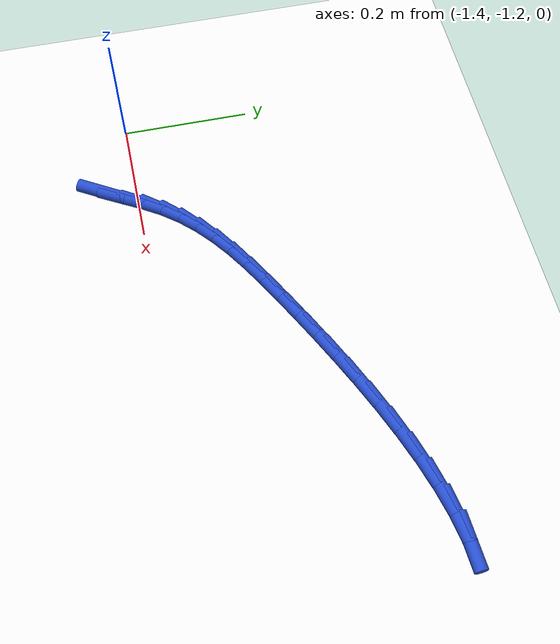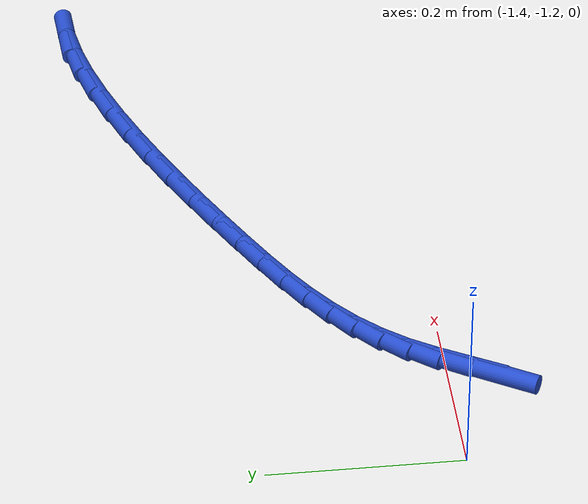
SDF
<sdf version="1.6">
 <world name="default">
  <model name="ground_plane">
   <static>1</static>
   <link name="link">
    <collision name="collision">
     <geometry><plane><normal>0 0 1</normal><size>100 100</size></plane></geometry>
     <surface><friction><ode><mu>100</mu><mu2>50</mu2></ode></friction></surface>
    </collision>
    <visual name="visual">
     <cast_shadows>0</cast_shadows>
     <geometry><plane><normal>0 0 1</normal><size>100 100</size></plane></geometry>
     <material>
      <script><uri>file://media/materials/scripts/gazebo.material</uri><name>Gazebo/WhiteGlow</name></script>
     </material>
    </visual>
   </link>
  </model>
  <model name="line">
   <link name="link_190">
    <pose>-1.2859529941177739 -1.2524046563738187 0.01 0 1.57 1.0380319080508809</pose>
    <collision name="collision">
     <geometry><cylinder><radius>0.01</radius><length>0.08</length></cylinder></geometry>
    </collision>
    <visual name="visual">
     <material>
      <script><name>Gazebo/Blue</name><uri>file://media/materials/scripts/gazebo.material</uri></script>
     </material>
     <geometry><cylinder><radius>0.01</radius><length>0.08</length></cylinder></geometry>
    </visual>
   </link>
   <link name="link_191">
    <pose>-1.2682136409949913 -1.2223194199280238 0.01 0 1.57 1.0626566344661186</pose>
    <collision name="collision">
     <geometry><cylinder><radius>0.01</radius><length>0.08</length></cylinder></geometry>
    </collision>
    <visual name="visual">
     <material>
      <script><name>Gazebo/Blue</name><uri>file://media/materials/scripts/gazebo.material</uri></script>
     </material>
     <geometry><cylinder><radius>0.01</radius><length>0.08</length></cylinder></geometry>
    </visual>
   </link>
   <link name="link_192">
    <pose>-1.251455539408933 -1.1922286796414245 0.01 0 1.57 1.0132202362523726</pose>
    <collision name="collision">
     <geometry><cylinder><radius>0.01</radius><length>0.08</length></cylinder></geometry>
    </collision>
    <visual name="visual">
     <material>
      <script><name>Gazebo/Blue</name><uri>file://media/materials/scripts/gazebo.material</uri></script>
     </material>
     <geometry><cylinder><radius>0.01</radius><length>0.08</length></cylinder></geometry>
    </visual>
   </link>
   <link name="link_193">
    <pose>-1.2337646120867876 -1.1638586478356354 0.01 0 1.57 0.9119386835132172</pose>
    <collision name="collision">
     <geometry><cylinder><radius>0.01</radius><length>0.08</length></cylinder></geometry>
    </collision>
    <visual name="visual">
     <material>
      <script><name>Gazebo/Blue</name><uri>file://media/materials/scripts/gazebo.material</uri></script>
     </material>
     <geometry><cylinder><radius>0.01</radius><length>0.08</length></cylinder></geometry>
    </visual>
   </link>
   <link name="link_194">
    <pose>-1.2138780388882047 -1.1381745624924127 0.01 0 1.57 0.8103936470442176</pose>
    <collision name="collision">
     <geometry><cylinder><radius>0.01</radius><length>0.08</length></cylinder></geometry>
    </collision>
    <visual name="visual">
     <material>
      <script><name>Gazebo/Blue</name><uri>file://media/materials/scripts/gazebo.material</uri></script>
     </material>
     <geometry><cylinder><radius>0.01</radius><length>0.08</length></cylinder></geometry>
    </visual>
   </link>
   <link name="link_195">
    <pose>-1.1916634647736266 -1.114820747179025 0.01 0 1.57 0.7192767160463954</pose>
    <collision name="collision">
     <geometry><cylinder><radius>0.01</radius><length>0.08</length></cylinder></geometry>
    </collision>
    <visual name="visual">
     <material>
      <script><name>Gazebo/Blue</name><uri>file://media/materials/scripts/gazebo.material</uri></script>
     </material>
     <geometry><cylinder><radius>0.01</radius><length>0.08</length></cylinder></geometry>
    </visual>
   </link>
   <link name="link_196">
    <pose>-1.1671014419547614 -1.0933095967410207 0.01 0 1.57 0.6425355290447222</pose>
    <collision name="collision">
     <geometry><cylinder><radius>0.01</radius><length>0.08</length></cylinder></geometry>
    </collision>
    <visual name="visual">
     <material>
      <script><name>Gazebo/Blue</name><uri>file://media/materials/scripts/gazebo.material</uri></script>
     </material>
     <geometry><cylinder><radius>0.01</radius><length>0.08</length></cylinder></geometry>
    </visual>
   </link>
   <link name="link_197">
    <pose>-1.1401725226433155 -1.0731535060239463 0.01 0 1.57 0.5819593620541169</pose>
    <collision name="collision">
     <geometry><cylinder><radius>0.01</radius><length>0.08</length></cylinder></geometry>
    </collision>
    <visual name="visual">
     <material>
      <script><name>Gazebo/Blue</name><uri>file://media/materials/scripts/gazebo.material</uri></script>
     </material>
     <geometry><cylinder><radius>0.01</radius><length>0.08</length></cylinder></geometry>
    </visual>
   </link>
   <link name="link_198">
    <pose>-1.1108572590509969 -1.0538648698733504 0.01 0 1.57 0.5375437891633403</pose>
    <collision name="collision">
     <geometry><cylinder><radius>0.01</radius><length>0.08</length></cylinder></geometry>
    </collision>
    <visual name="visual">
     <material>
      <script><name>Gazebo/Blue</name><uri>file://media/materials/scripts/gazebo.material</uri></script>
     </material>
     <geometry><cylinder><radius>0.01</radius><length>0.08</length></cylinder></geometry>
    </visual>
   </link>
   <link name="link_199">
    <pose>-1.0791362033895127 -1.0349560831347806 0.01 0 1.57 0.5081357937459351</pose>
    <collision name="collision">
     <geometry><cylinder><radius>0.01</radius><length>0.08</length></cylinder></geometry>
    </collision>
    <visual name="visual">
     <material>
      <script><name>Gazebo/Blue</name><uri>file://media/materials/scripts/gazebo.material</uri></script>
     </material>
     <geometry><cylinder><radius>0.01</radius><length>0.08</length></cylinder></geometry>
    </visual>
   </link>
   <link name="link_200">
    <pose>-1.0449899078705704 -1.0159395406537846 0.01 0 1.57 0.49176721384351346</pose>
    <collision name="collision">
     <geometry><cylinder><radius>0.01</radius><length>0.08</length></cylinder></geometry>
    </collision>
    <visual name="visual">
     <material>
      <script><name>Gazebo/Blue</name><uri>file://media/materials/scripts/gazebo.material</uri></script>
     </material>
     <geometry><cylinder><radius>0.01</radius><length>0.08</length></cylinder></geometry>
    </visual>
   </link>
   <link name="link_201">
    <pose>-1.0084075651810447 -0.9963438326497279 0.01 0 1.57 0.4799281637354137</pose>
    <collision name="collision">
     <geometry><cylinder><radius>0.01</radius><length>0.08</length></cylinder></geometry>
    </collision>
    <visual name="visual">
     <material>
      <script><name>Gazebo/Blue</name><uri>file://media/materials/scripts/gazebo.material</uri></script>
     </material>
     <geometry><cylinder><radius>0.01</radius><length>0.08</length></cylinder></geometry>
    </visual>
   </link>
   <link name="link_202">
    <pose>-0.9696227270383785 -0.9761555664960376 0.01 0 1.57 0.46448608373095784</pose>
    <collision name="collision">
     <geometry><cylinder><radius>0.01</radius><length>0.08</length></cylinder></geometry>
    </collision>
    <visual name="visual">
     <material>
      <script><name>Gazebo/Blue</name><uri>file://media/materials/scripts/gazebo.material</uri></script>
     </material>
     <geometry><cylinder><radius>0.01</radius><length>0.08</length></cylinder></geometry>
    </visual>
   </link>
   <link name="link_203">
    <pose>-0.9291417120458679 -0.9558726133098635 0.01 0 1.57 0.4447408932627644</pose>
    <collision name="collision">
     <geometry><cylinder><radius>0.01</radius><length>0.08</length></cylinder></geometry>
    </collision>
    <visual name="visual">
     <material>
      <script><name>Gazebo/Blue</name><uri>file://media/materials/scripts/gazebo.material</uri></script>
     </material>
     <geometry><cylinder><radius>0.01</radius><length>0.08</length></cylinder></geometry>
    </visual>
   </link>
   <link name="link_204">
    <pose>-0.8874851824042385 -0.9360197292948544 0.01 0 1.57 0.42005826523213297</pose>
    <collision name="collision">
     <geometry><cylinder><radius>0.01</radius><length>0.08</length></cylinder></geometry>
    </collision>
    <visual name="visual">
     <material>
      <script><name>Gazebo/Blue</name><uri>file://media/materials/scripts/gazebo.material</uri></script>
     </material>
     <geometry><cylinder><radius>0.01</radius><length>0.08</length></cylinder></geometry>
    </visual>
   </link>
   <link name="link_205">
    <pose>-0.8451738003142165 -0.9171216706546607 0.01 0 1.57 0.38941570879400095</pose>
    <collision name="collision">
     <geometry><cylinder><radius>0.01</radius><length>0.08</length></cylinder></geometry>
    </collision>
    <visual name="visual">
     <material>
      <script><name>Gazebo/Blue</name><uri>file://media/materials/scripts/gazebo.material</uri></script>
     </material>
     <geometry><cylinder><radius>0.01</radius><length>0.08</length></cylinder></geometry>
    </visual>
   </link>
   <link name="link_206">
    <pose>-0.8027282279765278 -0.8997031935929309 0.01 0 1.57 0.35128695054995485</pose>
    <collision name="collision">
     <geometry><cylinder><radius>0.01</radius><length>0.08</length></cylinder></geometry>
    </collision>
    <visual name="visual">
     <material>
      <script><name>Gazebo/Blue</name><uri>file://media/materials/scripts/gazebo.material</uri></script>
     </material>
     <geometry><cylinder><radius>0.01</radius><length>0.08</length></cylinder></geometry>
    </visual>
   </link>
   <link name="link_207">
    <pose>-0.7606691275918982 -0.8842890543133145 0.01 0 1.57 0.30343946448510634</pose>
    <collision name="collision">
     <geometry><cylinder><radius>0.01</radius><length>0.08</length></cylinder></geometry>
    </collision>
    <visual name="visual">
     <material>
      <script><name>Gazebo/Blue</name><uri>file://media/materials/scripts/gazebo.material</uri></script>
     </material>
     <geometry><cylinder><radius>0.01</radius><length>0.08</length></cylinder></geometry>
    </visual>
   </link>
   <link name="link_208">
    <pose>-0.7195171613610533 -0.8714040090194609 0.01 0 1.57 0.24261160484694233</pose>
    <collision name="collision">
     <geometry><cylinder><radius>0.01</radius><length>0.08</length></cylinder></geometry>
    </collision>
    <visual name="visual">
     <material>
      <script><name>Gazebo/Blue</name><uri>file://media/materials/scripts/gazebo.material</uri></script>
     </material>
     <geometry><cylinder><radius>0.01</radius><length>0.08</length></cylinder></geometry>
    </visual>
   </link>
   <link name="link_209">
    <pose>-0.6797929914847209 -0.8615728139150205 0.01 0 1.57 0.16403158301753387</pose>
    <collision name="collision">
     <geometry><cylinder><radius>0.01</radius><length>0.08</length></cylinder></geometry>
    </collision>
    <visual name="visual">
     <material>
      <script><name>Gazebo/Blue</name><uri>file://media/materials/scripts/gazebo.material</uri></script>
     </material>
     <geometry><cylinder><radius>0.01</radius><length>0.08</length></cylinder></geometry>
    </visual>
   </link>
   <link name="link_210">
    <pose>-0.6420172801636242 -0.8553202252036411 0.01 0 1.57 0.06079820449496725</pose>
    <collision name="collision">
     <geometry><cylinder><radius>0.01</radius><length>0.08</length></cylinder></geometry>
    </collision>
    <visual name="visual">
     <material>
      <script><name>Gazebo/Blue</name><uri>file://media/materials/scripts/gazebo.material</uri></script>
     </material>
     <geometry><cylinder><radius>0.01</radius><length>0.08</length></cylinder></geometry>
    </visual>
   </link>
  </model>
 </world>
</sdf>
